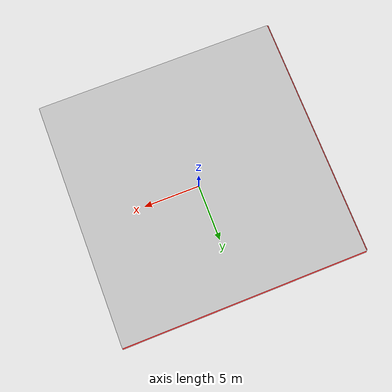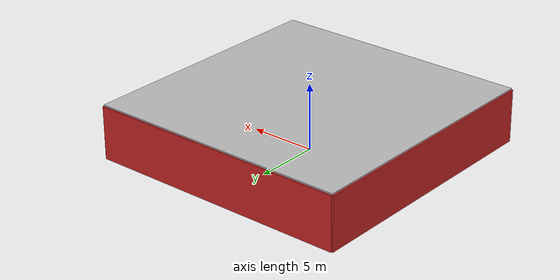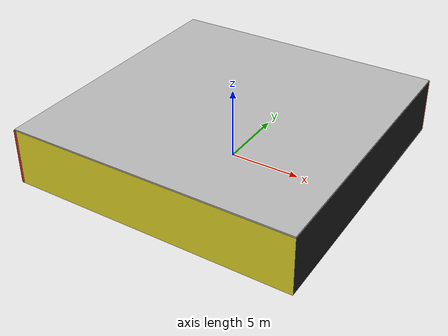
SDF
<sdf version="1.4">
 <world name="default">
  <physics type="ode">
   <max_step_size>0.001</max_step_size>
   <real_time_factor>1</real_time_factor>
   <real_time_update_rate>1000</real_time_update_rate>
   <gravity>0 0 -9.8</gravity>
  </physics>
  <scene><ambient>0.4 0.4 0.4 1</ambient><background>0.7 0.7 0.7 1</background><shadows>1</shadows></scene>
  <model name="Surrounding">
   <static>1</static>
   <link name="Ceiling">
    <collision name="Ceiling_Collision"><geometry><box><size>20 20 0.1</size></box></geometry></collision>
    <visual name="Ceiling_Visual">
     <geometry><box><size>20 20 0.1</size></box></geometry>
     <material>
      <script><uri>file://media/materials/scripts/gazebo.material</uri><name>Gazebo/LightOn</name></script>
     </material>
    </visual>
    <pose>0 0 4.05 0 0 0</pose>
   </link>
   <link name="Wall_South">
    <collision name="Wall_South_Collision">
     <geometry><box><size>20 0 4</size></box></geometry>
     <pose>0 0 2 0 -0 0</pose>
    </collision>
    <visual name="Wall_South_Visual">
     <pose>0 0 2 0 -0 0</pose>
     <geometry><box><size>20 0 4</size></box></geometry>
     <material>
      <script><uri>file://media/materials/scripts/gazebo.material</uri><name>Gazebo/YellowGlow</name></script>
     </material>
    </visual>
    <velocity_decay><linear>0</linear><angular>0</angular></velocity_decay>
    <pose>0 -10 0 0 -0 0</pose>
   </link>
   <link name="Wall_East">
    <collision name="Wall_21_Collision">
     <geometry><box><size>20 0 4</size></box></geometry>
     <pose>0 0 2 0 -0 0</pose>
    </collision>
    <visual name="Wall_21_Visual">
     <pose>0 0 2 0 -0 0</pose>
     <geometry><box><size>20 0 4</size></box></geometry>
     <material>
      <script><uri>file://media/materials/scripts/gazebo.material</uri><name>Gazebo/FlatBlack</name></script>
     </material>
    </visual>
    <velocity_decay><linear>0</linear><angular>0</angular></velocity_decay>
    <pose>10 0 0 0 -0 1.5708</pose>
   </link>
   <link name="Wall_North">
    <collision name="Wall_22_Collision">
     <geometry><box><size>20 0.2 4</size></box></geometry>
     <pose>0 0 2 0 -0 0</pose>
    </collision>
    <visual name="Wall_22_Visual">
     <pose>0 0 2 0 -0 0</pose>
     <geometry><box><size>20 0.2 4</size></box></geometry>
     <material>
      <script><uri>file://media/materials/scripts/gazebo.material</uri><name>Gazebo/RedGlow</name></script>
     </material>
    </visual>
    <velocity_decay><linear>0</linear><angular>0</angular></velocity_decay>
    <pose>0 10 0 0 -0 0</pose>
   </link>
   <link name="Wall_West">
    <collision name="Wall_23_Collision">
     <geometry><box><size>20 0.2 4</size></box></geometry>
     <pose>0 0 2 0 -0 0</pose>
    </collision>
    <visual name="Wall_23_Visual">
     <pose>0 0 2 0 -0 0</pose>
     <geometry><box><size>20 0.2 4</size></box></geometry>
     <material>
      <script><uri>file://media/materials/scripts/gazebo.material</uri><name>Gazebo/Red</name></script>
     </material>
    </visual>
    <velocity_decay><linear>0</linear><angular>0</angular></velocity_decay>
    <pose>-10 0 0 0 0 -1.5708</pose>
   </link>
   <link name="Ground_link">
    <collision name="collision">
     <pose>0 0 .05 0 -0 0</pose>
     <geometry><box><size>20 20 0.1</size></box></geometry>
    </collision>
    <visual name="visual">
     <pose>0 0 .05 0 -0 0</pose>
     <geometry><box><size>20 20 0.1</size></box></geometry>
     <material>
      <script><uri>file://media/materials/scripts/gazebo.material</uri><name>Gazebo/FlatBlack</name></script>
     </material>
    </visual>
   </link>
   <static>1</static>
  </model>
  <spherical_coordinates>
   <surface_model>EARTH_WGS84</surface_model>
   <latitude_deg>0</latitude_deg>
   <longitude_deg>0</longitude_deg>
   <elevation>0</elevation>
   <heading_deg>0</heading_deg>
  </spherical_coordinates>
  <light name="lightball_0" type="diffuse">
   <diffuse>0.8 0.8 0.8 1</diffuse>
   <specular>0.2 0.2 0.2 1</specular>
   <attenuation>
    <range>100</range>
    <constant>0.7</constant>
    <linear>0.01</linear>
    <quadratic>0.001</quadratic>
   </attenuation>
   <direction>-0.5 0.1 -0.9</direction>
   <pose>-6.08319055542 2.24364877961 2.61298185517 0 0 0</pose>
  </light>
  <light name="lightball_1" type="diffuse">
   <diffuse>0.8 0.8 0.8 1</diffuse>
   <specular>0.2 0.2 0.2 1</specular>
   <attenuation>
    <range>100</range>
    <constant>0.7</constant>
    <linear>0.01</linear>
    <quadratic>0.001</quadratic>
   </attenuation>
   <direction>-0.5 0.1 -0.9</direction>
   <pose>-6.83641739685 1.8449206505 1.4685450162 0 0 0</pose>
  </light>
  <light name="lightball_2" type="diffuse">
   <diffuse>0.8 0.8 0.8 1</diffuse>
   <specular>0.2 0.2 0.2 1</specular>
   <attenuation>
    <range>100</range>
    <constant>0.7</constant>
    <linear>0.01</linear>
    <quadratic>0.001</quadratic>
   </attenuation>
   <direction>-0.5 0.1 -0.9</direction>
   <pose>0.76452562011 1.08009389844 1.21050314369 0 0 0</pose>
  </light>
  <light name="lightball_3" type="diffuse">
   <diffuse>0.8 0.8 0.8 1</diffuse>
   <specular>0.2 0.2 0.2 1</specular>
   <attenuation>
    <range>100</range>
    <constant>0.7</constant>
    <linear>0.01</linear>
    <quadratic>0.001</quadratic>
   </attenuation>
   <direction>-0.5 0.1 -0.9</direction>
   <pose>-6.76767017544 9.996994796 1.54610166867 0 0 0</pose>
  </light>
  <light name="lightball_4" type="diffuse">
   <diffuse>0.8 0.8 0.8 1</diffuse>
   <specular>0.2 0.2 0.2 1</specular>
   <attenuation>
    <range>100</range>
    <constant>0.7</constant>
    <linear>0.01</linear>
    <quadratic>0.001</quadratic>
   </attenuation>
   <direction>-0.5 0.1 -0.9</direction>
   <pose>8.37269165128 -8.91400440087 2.15130946009 0 0 0</pose>
  </light>
  <light name="lightball_5" type="diffuse">
   <diffuse>0.8 0.8 0.8 1</diffuse>
   <specular>0.2 0.2 0.2 1</specular>
   <attenuation>
    <range>100</range>
    <constant>0.7</constant>
    <linear>0.01</linear>
    <quadratic>0.001</quadratic>
   </attenuation>
   <direction>-0.5 0.1 -0.9</direction>
   <pose>3.87700916492 2.14593600013 2.26920411615 0 0 0</pose>
  </light>
  <light name="lightball_6" type="diffuse">
   <diffuse>0.8 0.8 0.8 1</diffuse>
   <specular>0.2 0.2 0.2 1</specular>
   <attenuation>
    <range>100</range>
    <constant>0.7</constant>
    <linear>0.01</linear>
    <quadratic>0.001</quadratic>
   </attenuation>
   <direction>-0.5 0.1 -0.9</direction>
   <pose>4.75287511997 1.44600956035 0.766911139375 0 0 0</pose>
  </light>
  <light name="lightball_7" type="diffuse">
   <diffuse>0.8 0.8 0.8 1</diffuse>
   <specular>0.2 0.2 0.2 1</specular>
   <attenuation>
    <range>100</range>
    <constant>0.7</constant>
    <linear>0.01</linear>
    <quadratic>0.001</quadratic>
   </attenuation>
   <direction>-0.5 0.1 -0.9</direction>
   <pose>-2.81164005839 5.21693736481 3.53468188618 0 0 0</pose>
  </light>
  <light name="lightball_8" type="diffuse">
   <diffuse>0.8 0.8 0.8 1</diffuse>
   <specular>0.2 0.2 0.2 1</specular>
   <attenuation>
    <range>100</range>
    <constant>0.7</constant>
    <linear>0.01</linear>
    <quadratic>0.001</quadratic>
   </attenuation>
   <direction>-0.5 0.1 -0.9</direction>
   <pose>2.42120840519 9.66593232653 1.79396642962 0 0 0</pose>
  </light>
  <light name="lightball_9" type="diffuse">
   <diffuse>0.8 0.8 0.8 1</diffuse>
   <specular>0.2 0.2 0.2 1</specular>
   <attenuation>
    <range>100</range>
    <constant>0.7</constant>
    <linear>0.01</linear>
    <quadratic>0.001</quadratic>
   </attenuation>
   <direction>-0.5 0.1 -0.9</direction>
   <pose>9.45106910212 -8.87154636238 3.59292233928 0 0 0</pose>
  </light>
  <light name="lightball_10" type="diffuse">
   <diffuse>0.8 0.8 0.8 1</diffuse>
   <specular>0.2 0.2 0.2 1</specular>
   <attenuation>
    <range>100</range>
    <constant>0.7</constant>
    <linear>0.01</linear>
    <quadratic>0.001</quadratic>
   </attenuation>
   <direction>-0.5 0.1 -0.9</direction>
   <pose>-4.53514583323 -4.48489113781 1.13398964452 0 0 0</pose>
  </light>
  <include>
   <uri>model://robocup_3Dsim_goal</uri>
   <pose>-6.34159231968 -4.52750005699 0 0 0 2.38359928709</pose>
  </include>
  <include><uri>model://cabinet</uri><pose>5.01215677494 -4.28457638161 0 0 0 2.95957819581</pose></include>
  <include><uri>model://cabinet</uri><pose>6.95647810918 3.68343215614 0 0 0 2.48434793515</pose></include>
 </world>
</sdf>

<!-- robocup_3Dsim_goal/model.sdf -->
<sdf version="1.5">
  <model name="robocup_3d_goal">
    <static>true</static>
    <link name="left_post">
      <pose>0 1.05 0.45 0 0 0</pose>
      <collision name="collision">
        <geometry>
          <cylinder>
            <radius>0.05</radius>
            <length>0.9</length>
          </cylinder>
        </geometry>
      </collision>
      <visual name="visual">
        <geometry>
          <cylinder>
            <radius>0.05</radius>
            <length>0.9</length>
          </cylinder>
        </geometry>
        <material>
          <script>
            <uri>file://media/materials/scripts/gazebo.material</uri>
            <name>Gazebo/ZincYellow</name>
          </script>
        </material>
      </visual>
    </link>
    <link name="left_support_horiz_lower">
      <pose>0.30 1.05 0.01 0 0 0</pose>
      <collision name="collision">
        <geometry>
          <box>
            <size>0.50 0.02 0.02</size>
          </box>
        </geometry>
      </collision>
      <visual name="visual">
        <geometry>
          <box>
            <size>0.50 0.02 0.02</size>
          </box>
        </geometry>
        <material>
          <script>
            <uri>file://media/materials/scripts/gazebo.material</uri>
            <name>Gazebo/White</name>
          </script>
        </material>
      </visual>
    </link>
    <link name="left_support_horiz_upper">
      <pose>0.30 1.05 0.79 0 0 0</pose>
      <collision name="collision">
        <geometry>
          <box>
            <size>0.50 0.02 0.02</size>
          </box>
        </geometry>
      </collision>
      <visual name="visual">
        <geometry>
          <box>
            <size>0.50 0.02 0.02</size>
          </box>
        </geometry>
        <material>
          <script>
            <uri>file://media/materials/scripts/gazebo.material</uri>
            <name>Gazebo/White</name>
          </script>
        </material>
      </visual>
    </link>
    <link name="left_support_vertical">
      <pose>0.56 1.05 0.4 0 1.5708 0</pose>
      <collision name="collision">
        <geometry>
          <box>
            <size>0.80 0.02 0.02</size>
          </box>
        </geometry>
      </collision>
      <visual name="visual">
        <geometry>
          <box>
            <size>0.80 0.02 0.02</size>
          </box>
        </geometry>
        <material>
          <script>
            <uri>file://media/materials/scripts/gazebo.material</uri>
            <name>Gazebo/White</name>
          </script>
        </material>
      </visual>
    </link>
    <link name="right_support_horiz_lower">
      <pose>0.30 -1.05 0.01 0 0 0</pose>
      <collision name="collision">
        <geometry>
          <box>
            <size>0.50 0.02 0.02</size>
          </box>
        </geometry>
      </collision>
      <visual name="visual">
        <geometry>
          <box>
            <size>0.50 0.02 0.02</size>
          </box>
        </geometry>
        <material>
          <script>
            <uri>file://media/materials/scripts/gazebo.material</uri>
            <name>Gazebo/White</name>
          </script>
        </material>
      </visual>
    </link>
    <link name="right_support_horiz_upper">
      <pose>0.30 -1.05 0.79 0 0 0</pose>
      <collision name="collision">
        <geometry>
          <box>
            <size>0.50 0.02 0.02</size>
          </box>
        </geometry>
      </collision>
      <visual name="visual">
        <geometry>
          <box>
            <size>0.50 0.02 0.02</size>
          </box>
        </geometry>
        <material>
          <script>
            <uri>file://media/materials/scripts/gazebo.material</uri>
            <name>Gazebo/White</name>
          </script>
        </material>
      </visual>
    </link>
    <link name="right_support_vertical">
      <pose>0.56 -1.05 0.4 0 1.5708 0</pose>
      <collision name="collision">
        <geometry>
          <box>
            <size>0.80 0.02 0.02</size>
          </box>
        </geometry>
      </collision>
      <visual name="visual">
        <geometry>
          <box>
            <size>0.80 0.02 0.02</size>
          </box>
        </geometry>
        <material>
          <script>
            <uri>file://media/materials/scripts/gazebo.material</uri>
            <name>Gazebo/White</name>
          </script>
        </material>
      </visual>
    </link>
    <link name="center_support_horiz_lower">
      <pose>0.56 0 0.01 0 1.5708 0</pose>
      <collision name="collision">
        <geometry>
          <box>
            <size>0.02 2.08 0.02</size>
          </box>
        </geometry>
      </collision>
      <visual name="visual">
        <geometry>
          <box>
            <size>0.02 2.08 0.02</size>
          </box>
        </geometry>
        <material>
          <script>
            <uri>file://media/materials/scripts/gazebo.material</uri>
            <name>Gazebo/White</name>
          </script>
        </material>
      </visual>
    </link>
    <link name="center_support_horiz_upper">
      <pose>0.56 0 0.79 0 1.5708 0</pose>
      <collision name="collision">
        <geometry>
          <box>
            <size>0.02 2.08 0.02</size>
          </box>
        </geometry>
      </collision>
      <visual name="visual">
        <geometry>
          <box>
            <size>0.02 2.08 0.02</size>
          </box>
        </geometry>
        <material>
          <script>
            <uri>file://media/materials/scripts/gazebo.material</uri>
            <name>Gazebo/White</name>
          </script>
        </material>
      </visual>
    </link>
    <link name="right_post">
      <pose>0 -1.05 0.45 0 0 0</pose>
      <collision name="collision">
        <geometry>
          <cylinder>
            <radius>0.05</radius>
            <length>0.9</length>
          </cylinder>
        </geometry>
      </collision>
      <visual name="visual">
        <geometry>
          <cylinder>
            <radius>0.05</radius>
            <length>0.9</length>
          </cylinder>
        </geometry>
        <material>
          <script>
            <uri>file://media/materials/scripts/gazebo.material</uri>
            <name>Gazebo/ZincYellow</name>
          </script>
        </material>
      </visual>
    </link>
    <link name="crossbar">
      <pose>0 0 0.85 1.57 1.57 0</pose>
      <collision name="collision">
        <geometry>
          <cylinder>
            <radius>0.05</radius>
            <length>2.0</length>
          </cylinder>
        </geometry>
      </collision>
      <visual name="visual">
        <geometry>
          <cylinder>
            <radius>0.05</radius>
            <length>2.0</length>
          </cylinder>
        </geometry>
        <material>
          <script>
            <uri>file://media/materials/scripts/gazebo.material</uri>
            <name>Gazebo/ZincYellow</name>
          </script>
        </material>
      </visual>
    </link>
    <link name="center_net">
      <pose>0.56 0 0.40 0 0 0</pose>
      <collision name="collision">
        <geometry>
          <box>
            <size>0.01 2.1 0.80</size>
          </box>
        </geometry>
      </collision>
      <visual name="visual">
        <geometry>
          <box>
            <size>0.01 2.1 0.80</size>
          </box>
        </geometry>
        <material>
          <script>
            <uri>model://../model_source/models/robocup09_spl_field/materials/scripts/</uri>
            <uri>model://../model_source/models/robocup09_spl_field/materials/textures/</uri>
            <name>RoboCup/Net</name>
          </script>
        </material>
      </visual>
    </link>
    <link name="left_net">
      <pose>0.30 1.05 0.40 0 0 0</pose>
      <collision name="collision">
        <geometry>
          <box>
            <size>0.50 0.01 0.76</size>
          </box>
        </geometry>
      </collision>
      <visual name="visual">
        <geometry>
          <box>
            <size>0.50 0.01 0.76</size>
          </box>
        </geometry>
        <material>
          <script>
            <uri>model://../model_source/models/robocup09_spl_field/materials/scripts/</uri>
            <uri>model://../model_source/models/robocup09_spl_field/materials/textures/</uri>
            <name>RoboCup/Net</name>
          </script>
        </material>
      </visual>
    </link>
    <link name="right_net">
      <pose>0.30 -1.05 0.40 0 0 0</pose>
      <collision name="collision">
        <geometry>
          <box>
            <size>0.50 0.01 0.76</size>
          </box>
        </geometry>
      </collision>
      <visual name="visual">
        <geometry>
          <box>
            <size>0.50 0.01 0.76</size>
          </box>
        </geometry>
        <material>
          <script>
            <uri>model://../model_source/models/robocup09_spl_field/materials/scripts/</uri>
            <uri>model://../model_source/models/robocup09_spl_field/materials/textures/</uri>
            <name>RoboCup/Net</name>
          </script>
        </material>
      </visual>
    </link>
  </model>
</sdf>

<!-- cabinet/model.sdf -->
<sdf version="1.5">
  <model name="cabinet">
    <static>true</static>
    <link name="cabinet_bottom_plate">
      <inertial>
        <pose>0 0 -1 0 0 0</pose>
        <inertia>
          <ixx>2.050000</ixx>
          <ixy>0</ixy>
          <ixz>0</ixz>
          <iyy>2.050000</iyy>
          <iyz>0</iyz>
          <izz>2.050000</izz>
        </inertia>
        <mass>25.000000</mass>
      </inertial>
      <collision name="cabinet_bottom_plate_geom">
        <pose>0 0 0.010000 0 0 0</pose>
        <geometry>
          <box>
            <size>0.450000 0.450000 0.020000</size>
          </box>
        </geometry>
      </collision>
      <visual name="cabinet_bottom_plate_geom_visual">
        <pose>0 0 0.010000 0 0 0</pose>
        <geometry>
          <box>
            <size>0.450000 0.450000 0.020000</size>
          </box>
        </geometry>
        <material>
          <script>
            <uri>model://media/materials/scripts/gazebo.material</uri>
            <name>Gazebo/Wood</name>
          </script>
        </material>
      </visual>
      <collision name="cabinet_bottom_plate_geom_cabinet_back_plate">
        <pose>0.235000 0 0.510000 0 0 0</pose>
        <geometry>
          <box>
            <size>0.020000 0.450000 1.020000</size>
          </box>
        </geometry>
      </collision>
      <visual name="cabinet_bottom_plate_geom_cabinet_back_plate_visual">
        <pose>0.235000 0 0.510000 0 0 0</pose>
        <geometry>
          <box>
            <size>0.020000 0.450000 1.020000</size>
          </box>
        </geometry>
        <material>
          <script>
            <uri>model://media/materials/scripts/gazebo.material</uri>
            <name>Gazebo/Wood</name>
          </script>
        </material>
      </visual>
      <collision name="cabinet_bottom_plate_geom_cabinet_left_plate">
        <pose>0 0.235000 0.510000 0 0 0</pose>
        <geometry>
          <box>
            <size>0.450000 0.020000 1.020000</size>
          </box>
        </geometry>
      </collision>
      <visual name="cabinet_bottom_plate_geom_cabinet_left_plate_visual">
        <pose>0 0.235000 0.510000 0 0 0</pose>
        <geometry>
          <box>
            <size>0.450000 0.020000 1.020000</size>
          </box>
        </geometry>
        <material>
          <script>
            <uri>model://media/materials/scripts/gazebo.material</uri>
            <name>Gazebo/Wood</name>
          </script>
        </material>
      </visual>
      <collision name="cabinet_bottom_plate_geom_cabinet_middle_plate">
        <pose>0 0 0.510000 0 0 0</pose>
        <geometry>
          <box>
            <size>0.450000 0.450000 0.020000</size>
          </box>
        </geometry>
      </collision>
      <visual name="cabinet_bottom_plate_geom_cabinet_middle_plate_visual">
        <pose>0 0 0.510000 0 0 0</pose>
        <geometry>
          <box>
            <size>0.450000 0.450000 0.020000</size>
          </box>
        </geometry>
        <material>
          <script>
            <uri>model://media/materials/scripts/gazebo.material</uri>
            <name>Gazebo/Wood</name>
          </script>
        </material>
      </visual>
      <collision name="cabinet_bottom_plate_geom_cabinet_right_plate">
        <pose>0 -0.235000 0.510000 0 0 0</pose>
        <geometry>
          <box>
            <size>0.450000 0.020000 1.020000</size>
          </box>
        </geometry>
      </collision>
      <visual name="cabinet_bottom_plate_geom_cabinet_right_plate_visual">
        <pose>0 -0.235000 0.510000 0 0 0</pose>
        <geometry>
          <box>
            <size>0.450000 0.020000 1.020000</size>
          </box>
        </geometry>
        <material>
          <script>
            <uri>model://media/materials/scripts/gazebo.material</uri>
            <name>Gazebo/Wood</name>
          </script>
        </material>
      </visual>
      <collision name="cabinet_bottom_plate_geom_cabinet_top_plate">
        <pose>0 0 1.010000 0 0 0</pose>
        <geometry>
          <box>
            <size>0.450000 0.450000 0.020000</size>
          </box>
        </geometry>
      </collision>
      <visual name="cabinet_bottom_plate_geom_cabinet_top_plate_visual">
        <pose>0 0 1.010000 0 0 0</pose>
        <geometry>
          <box>
            <size>0.450000 0.450000 0.020000</size>
          </box>
        </geometry>
        <material>
          <script>
            <uri>model://media/materials/scripts/gazebo.material</uri>
            <name>Gazebo/Wood</name>
          </script>
        </material>
      </visual>
    </link>
  </model>
</sdf>
